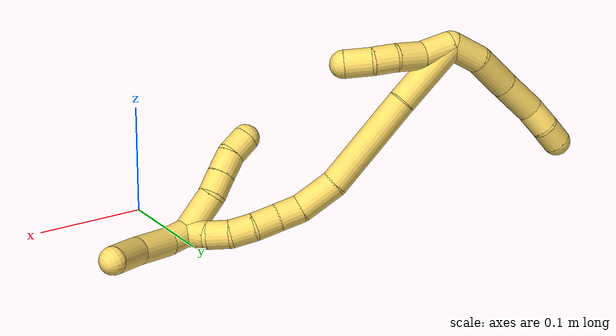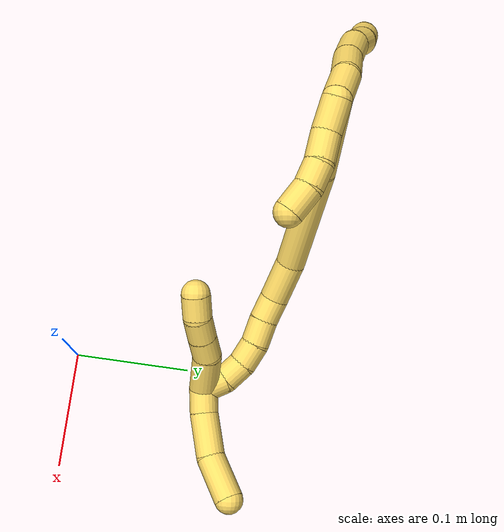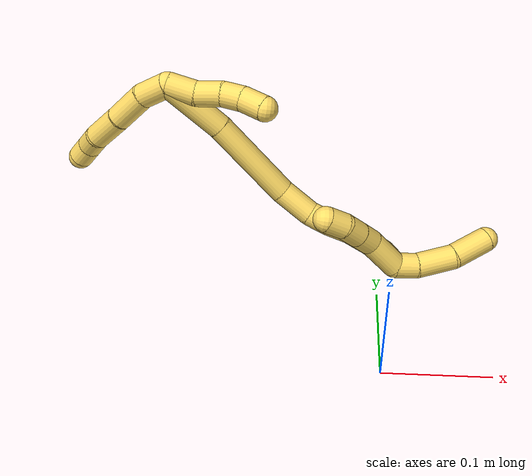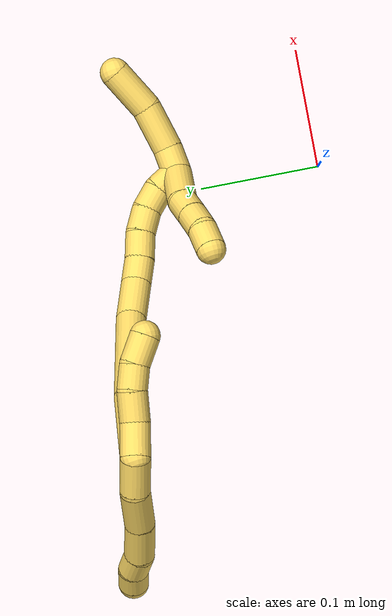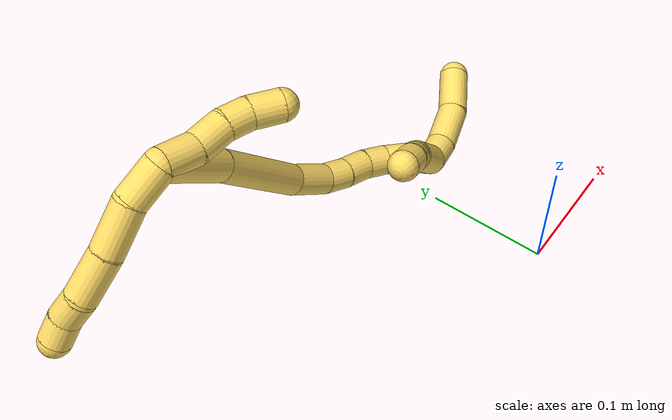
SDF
<sdf version="1.7">
 <world name="default">
  <model name="5">
   <static>0</static>
   <link name="5">
    <collision name="collision-cylinder-e_1_2_8">
     <pose>-0.008739 -0.007303 0.011016 0.585426 -0.584239 -0.180764</pose>
     <geometry><cylinder><radius>0.0125</radius><length>0.031689</length></cylinder></geometry>
     <surface>
      <friction><ode><mu>1.16</mu><mu2>1.16</mu2><slip1>0</slip1><slip2>0</slip2></ode></friction>
      <contact><ode><kp>1e+06</kp><kd>1</kd><max_vel>0</max_vel><min_depth>0.001</min_depth></ode></contact>
     </surface>
    </collision>
    <visual name="visual-cylinder-e_1_2_8">
     <pose>-0.008739 -0.007303 0.011016 0.585426 -0.584239 -0.180764</pose>
     <geometry><cylinder><radius>0.0125</radius><length>0.031689</length></cylinder></geometry>
     <material><ambient>1 0.858824 0.4 1</ambient></material>
    </visual>
    <collision name="collision-cylinder-e_2_8_9">
     <pose>-0.027166 -0.027746 0.032653 0.891015 -0.520579 -0.253002</pose>
     <geometry><cylinder><radius>0.0125</radius><length>0.038952</length></cylinder></geometry>
     <surface>
      <friction><ode><mu>1.16</mu><mu2>1.16</mu2><slip1>0</slip1><slip2>0</slip2></ode></friction>
      <contact><ode><kp>1e+06</kp><kd>1</kd><max_vel>0</max_vel><min_depth>0.001</min_depth></ode></contact>
     </surface>
    </collision>
    <visual name="visual-cylinder-e_2_8_9">
     <pose>-0.027166 -0.027746 0.032653 0.891015 -0.520579 -0.253002</pose>
     <geometry><cylinder><radius>0.0125</radius><length>0.038952</length></cylinder></geometry>
     <material><ambient>1 0.858824 0.4 1</ambient></material>
    </visual>
    <collision name="collision-cylinder-e_3_9_10">
     <pose>-0.047743 -0.052468 0.053124 0.865997 -0.62156 -0.294788</pose>
     <geometry><cylinder><radius>0.0125</radius><length>0.037403</length></cylinder></geometry>
     <surface>
      <friction><ode><mu>1.16</mu><mu2>1.16</mu2><slip1>0</slip1><slip2>0</slip2></ode></friction>
      <contact><ode><kp>1e+06</kp><kd>1</kd><max_vel>0</max_vel><min_depth>0.001</min_depth></ode></contact>
     </surface>
    </collision>
    <visual name="visual-cylinder-e_3_9_10">
     <pose>-0.047743 -0.052468 0.053124 0.865997 -0.62156 -0.294788</pose>
     <geometry><cylinder><radius>0.0125</radius><length>0.037403</length></cylinder></geometry>
     <material><ambient>1 0.858824 0.4 1</ambient></material>
    </visual>
    <collision name="collision-cylinder-e_4_10_11">
     <pose>-0.066926 -0.070152 0.066737 1.01833 -0.857974 -0.500011</pose>
     <geometry><cylinder><radius>0.0125</radius><length>0.021926</length></cylinder></geometry>
     <surface>
      <friction><ode><mu>1.16</mu><mu2>1.16</mu2><slip1>0</slip1><slip2>0</slip2></ode></friction>
      <contact><ode><kp>1e+06</kp><kd>1</kd><max_vel>0</max_vel><min_depth>0.001</min_depth></ode></contact>
     </surface>
    </collision>
    <visual name="visual-cylinder-e_4_10_11">
     <pose>-0.066926 -0.070152 0.066737 1.01833 -0.857974 -0.500011</pose>
     <geometry><cylinder><radius>0.0125</radius><length>0.021926</length></cylinder></geometry>
     <material><ambient>1 0.858824 0.4 1</ambient></material>
    </visual>
    <collision name="collision-cylinder-e_5_11_6">
     <pose>-0.080986 -0.083196 0.074843 1.01167 -0.613496 -0.347357</pose>
     <geometry><cylinder><radius>0.0125</radius><length>0.02003</length></cylinder></geometry>
     <surface>
      <friction><ode><mu>1.16</mu><mu2>1.16</mu2><slip1>0</slip1><slip2>0</slip2></ode></friction>
      <contact><ode><kp>1e+06</kp><kd>1</kd><max_vel>0</max_vel><min_depth>0.001</min_depth></ode></contact>
     </surface>
    </collision>
    <visual name="visual-cylinder-e_5_11_6">
     <pose>-0.080986 -0.083196 0.074843 1.01167 -0.613496 -0.347357</pose>
     <geometry><cylinder><radius>0.0125</radius><length>0.02003</length></cylinder></geometry>
     <material><ambient>1 0.858824 0.4 1</ambient></material>
    </visual>
    <collision name="collision-cylinder-e_1_2_12">
     <pose>0.003278 -0.002376 -0.013681 2.96964 0.231807 1.8671</pose>
     <geometry><cylinder><radius>0.0125</radius><length>0.028536</length></cylinder></geometry>
     <surface>
      <friction><ode><mu>1.16</mu><mu2>1.16</mu2><slip1>0</slip1><slip2>0</slip2></ode></friction>
      <contact><ode><kp>1e+06</kp><kd>1</kd><max_vel>0</max_vel><min_depth>0.001</min_depth></ode></contact>
     </surface>
    </collision>
    <visual name="visual-cylinder-e_1_2_12">
     <pose>0.003278 -0.002376 -0.013681 2.96964 0.231807 1.8671</pose>
     <geometry><cylinder><radius>0.0125</radius><length>0.028536</length></cylinder></geometry>
     <material><ambient>1 0.858824 0.4 1</ambient></material>
    </visual>
    <collision name="collision-cylinder-e_2_12_13">
     <pose>0.010548 -0.003133 -0.039632 -3.01037 0.312059 -2.35026</pose>
     <geometry><cylinder><radius>0.0125</radius><length>0.026008</length></cylinder></geometry>
     <surface>
      <friction><ode><mu>1.16</mu><mu2>1.16</mu2><slip1>0</slip1><slip2>0</slip2></ode></friction>
      <contact><ode><kp>1e+06</kp><kd>1</kd><max_vel>0</max_vel><min_depth>0.001</min_depth></ode></contact>
     </surface>
    </collision>
    <visual name="visual-cylinder-e_2_12_13">
     <pose>0.010548 -0.003133 -0.039632 -3.01037 0.312059 -2.35026</pose>
     <geometry><cylinder><radius>0.0125</radius><length>0.026008</length></cylinder></geometry>
     <material><ambient>1 0.858824 0.4 1</ambient></material>
    </visual>
    <collision name="collision-cylinder-e_3_13_14">
     <pose>0.018617 -0.002416 -0.061402 3.04687 0.403681 2.68638</pose>
     <geometry><cylinder><radius>0.0125</radius><length>0.020753</length></cylinder></geometry>
     <surface>
      <friction><ode><mu>1.16</mu><mu2>1.16</mu2><slip1>0</slip1><slip2>0</slip2></ode></friction>
      <contact><ode><kp>1e+06</kp><kd>1</kd><max_vel>0</max_vel><min_depth>0.001</min_depth></ode></contact>
     </surface>
    </collision>
    <visual name="visual-cylinder-e_3_13_14">
     <pose>0.018617 -0.002416 -0.061402 3.04687 0.403681 2.68638</pose>
     <geometry><cylinder><radius>0.0125</radius><length>0.020753</length></cylinder></geometry>
     <material><ambient>1 0.858824 0.4 1</ambient></material>
    </visual>
    <collision name="collision-cylinder-e_4_14_5">
     <pose>0.0296 -0.006168 -0.080737 2.85957 0.593442 2.27226</pose>
     <geometry><cylinder><radius>0.0125</radius><length>0.024703</length></cylinder></geometry>
     <surface>
      <friction><ode><mu>1.16</mu><mu2>1.16</mu2><slip1>0</slip1><slip2>0</slip2></ode></friction>
      <contact><ode><kp>1e+06</kp><kd>1</kd><max_vel>0</max_vel><min_depth>0.001</min_depth></ode></contact>
     </surface>
    </collision>
    <visual name="visual-cylinder-e_4_14_5">
     <pose>0.0296 -0.006168 -0.080737 2.85957 0.593442 2.27226</pose>
     <geometry><cylinder><radius>0.0125</radius><length>0.024703</length></cylinder></geometry>
     <material><ambient>1 0.858824 0.4 1</ambient></material>
    </visual>
    <collision name="collision-cylinder-e_1_2_15">
     <pose>-0.003996 -0.017389 -0.027433 2.57663 -0.122412 -0.416176</pose>
     <geometry><cylinder><radius>0.0125</radius><length>0.065451</length></cylinder></geometry>
     <surface>
      <friction><ode><mu>1.16</mu><mu2>1.16</mu2><slip1>0</slip1><slip2>0</slip2></ode></friction>
      <contact><ode><kp>1e+06</kp><kd>1</kd><max_vel>0</max_vel><min_depth>0.001</min_depth></ode></contact>
     </surface>
    </collision>
    <visual name="visual-cylinder-e_1_2_15">
     <pose>-0.003996 -0.017389 -0.027433 2.57663 -0.122412 -0.416176</pose>
     <geometry><cylinder><radius>0.0125</radius><length>0.065451</length></cylinder></geometry>
     <material><ambient>1 0.858824 0.4 1</ambient></material>
    </visual>
    <collision name="collision-cylinder-e_2_15_16">
     <pose>-0.012446 -0.06367 -0.090446 2.45957 -0.096869 -0.2715</pose>
     <geometry><cylinder><radius>0.0125</radius><length>0.092096</length></cylinder></geometry>
     <surface>
      <friction><ode><mu>1.16</mu><mu2>1.16</mu2><slip1>0</slip1><slip2>0</slip2></ode></friction>
      <contact><ode><kp>1e+06</kp><kd>1</kd><max_vel>0</max_vel><min_depth>0.001</min_depth></ode></contact>
     </surface>
    </collision>
    <visual name="visual-cylinder-e_2_15_16">
     <pose>-0.012446 -0.06367 -0.090446 2.45957 -0.096869 -0.2715</pose>
     <geometry><cylinder><radius>0.0125</radius><length>0.092096</length></cylinder></geometry>
     <material><ambient>1 0.858824 0.4 1</ambient></material>
    </visual>
    <collision name="collision-cylinder-e_3_16_17">
     <pose>-0.014782 -0.102187 -0.14144 2.58337 0.115964 0.399677</pose>
     <geometry><cylinder><radius>0.0125</radius><length>0.036591</length></cylinder></geometry>
     <surface>
      <friction><ode><mu>1.16</mu><mu2>1.16</mu2><slip1>0</slip1><slip2>0</slip2></ode></friction>
      <contact><ode><kp>1e+06</kp><kd>1</kd><max_vel>0</max_vel><min_depth>0.001</min_depth></ode></contact>
     </surface>
    </collision>
    <visual name="visual-cylinder-e_3_16_17">
     <pose>-0.014782 -0.102187 -0.14144 2.58337 0.115964 0.399677</pose>
     <geometry><cylinder><radius>0.0125</radius><length>0.036591</length></cylinder></geometry>
     <material><ambient>1 0.858824 0.4 1</ambient></material>
    </visual>
    <collision name="collision-cylinder-e_4_17_18">
     <pose>-0.009522 -0.115211 -0.166499 2.80282 0.298248 1.44159</pose>
     <geometry><cylinder><radius>0.0125</radius><length>0.021397</length></cylinder></geometry>
     <surface>
      <friction><ode><mu>1.16</mu><mu2>1.16</mu2><slip1>0</slip1><slip2>0</slip2></ode></friction>
      <contact><ode><kp>1e+06</kp><kd>1</kd><max_vel>0</max_vel><min_depth>0.001</min_depth></ode></contact>
     </surface>
    </collision>
    <visual name="visual-cylinder-e_4_17_18">
     <pose>-0.009522 -0.115211 -0.166499 2.80282 0.298248 1.44159</pose>
     <geometry><cylinder><radius>0.0125</radius><length>0.021397</length></cylinder></geometry>
     <material><ambient>1 0.858824 0.4 1</ambient></material>
    </visual>
    <collision name="collision-cylinder-e_5_18_19">
     <pose>-0.003676 -0.12111 -0.186794 2.91098 0.242143 1.62004</pose>
     <geometry><cylinder><radius>0.0125</radius><length>0.022537</length></cylinder></geometry>
     <surface>
      <friction><ode><mu>1.16</mu><mu2>1.16</mu2><slip1>0</slip1><slip2>0</slip2></ode></friction>
      <contact><ode><kp>1e+06</kp><kd>1</kd><max_vel>0</max_vel><min_depth>0.001</min_depth></ode></contact>
     </surface>
    </collision>
    <visual name="visual-cylinder-e_5_18_19">
     <pose>-0.003676 -0.12111 -0.186794 2.91098 0.242143 1.62004</pose>
     <geometry><cylinder><radius>0.0125</radius><length>0.022537</length></cylinder></geometry>
     <material><ambient>1 0.858824 0.4 1</ambient></material>
    </visual>
    <collision name="collision-cylinder-e_6_19_20">
     <pose>0.003294 -0.1271 -0.206464 2.77249 0.415601 1.69224</pose>
     <geometry><cylinder><radius>0.0125</radius><length>0.021143</length></cylinder></geometry>
     <surface>
      <friction><ode><mu>1.16</mu><mu2>1.16</mu2><slip1>0</slip1><slip2>0</slip2></ode></friction>
      <contact><ode><kp>1e+06</kp><kd>1</kd><max_vel>0</max_vel><min_depth>0.001</min_depth></ode></contact>
     </surface>
    </collision>
    <visual name="visual-cylinder-e_6_19_20">
     <pose>0.003294 -0.1271 -0.206464 2.77249 0.415601 1.69224</pose>
     <geometry><cylinder><radius>0.0125</radius><length>0.021143</length></cylinder></geometry>
     <material><ambient>1 0.858824 0.4 1</ambient></material>
    </visual>
    <collision name="collision-cylinder-e_7_20_21">
     <pose>0.014085 -0.133855 -0.222397 2.70018 0.706338 2.04809</pose>
     <geometry><cylinder><radius>0.0125</radius><length>0.020101</length></cylinder></geometry>
     <surface>
      <friction><ode><mu>1.16</mu><mu2>1.16</mu2><slip1>0</slip1><slip2>0</slip2></ode></friction>
      <contact><ode><kp>1e+06</kp><kd>1</kd><max_vel>0</max_vel><min_depth>0.001</min_depth></ode></contact>
     </surface>
    </collision>
    <visual name="visual-cylinder-e_7_20_21">
     <pose>0.014085 -0.133855 -0.222397 2.70018 0.706338 2.04809</pose>
     <geometry><cylinder><radius>0.0125</radius><length>0.020101</length></cylinder></geometry>
     <material><ambient>1 0.858824 0.4 1</ambient></material>
    </visual>
    <collision name="collision-cylinder-e_8_21_1">
     <pose>0.029123 -0.141145 -0.233585 2.38646 0.967201 1.84803</pose>
     <geometry><cylinder><radius>0.0125</radius><length>0.020684</length></cylinder></geometry>
     <surface>
      <friction><ode><mu>1.16</mu><mu2>1.16</mu2><slip1>0</slip1><slip2>0</slip2></ode></friction>
      <contact><ode><kp>1e+06</kp><kd>1</kd><max_vel>0</max_vel><min_depth>0.001</min_depth></ode></contact>
     </surface>
    </collision>
    <visual name="visual-cylinder-e_8_21_1">
     <pose>0.029123 -0.141145 -0.233585 2.38646 0.967201 1.84803</pose>
     <geometry><cylinder><radius>0.0125</radius><length>0.020684</length></cylinder></geometry>
     <material><ambient>1 0.858824 0.4 1</ambient></material>
    </visual>
    <collision name="collision-cylinder-e_1_1_22">
     <pose>0.041827 -0.134069 -0.222881 -0.637713 0.221019 -0.073229</pose>
     <geometry><cylinder><radius>0.0125</radius><length>0.038215</length></cylinder></geometry>
     <surface>
      <friction><ode><mu>1.16</mu><mu2>1.16</mu2><slip1>0</slip1><slip2>0</slip2></ode></friction>
      <contact><ode><kp>1e+06</kp><kd>1</kd><max_vel>0</max_vel><min_depth>0.001</min_depth></ode></contact>
     </surface>
    </collision>
    <visual name="visual-cylinder-e_1_1_22">
     <pose>0.041827 -0.134069 -0.222881 -0.637713 0.221019 -0.073229</pose>
     <geometry><cylinder><radius>0.0125</radius><length>0.038215</length></cylinder></geometry>
     <material><ambient>1 0.858824 0.4 1</ambient></material>
    </visual>
    <collision name="collision-cylinder-e_2_22_23">
     <pose>0.050667 -0.118864 -0.199869 -0.472569 0.476054 -0.116708</pose>
     <geometry><cylinder><radius>0.0125</radius><length>0.020302</length></cylinder></geometry>
     <surface>
      <friction><ode><mu>1.16</mu><mu2>1.16</mu2><slip1>0</slip1><slip2>0</slip2></ode></friction>
      <contact><ode><kp>1e+06</kp><kd>1</kd><max_vel>0</max_vel><min_depth>0.001</min_depth></ode></contact>
     </surface>
    </collision>
    <visual name="visual-cylinder-e_2_22_23">
     <pose>0.050667 -0.118864 -0.199869 -0.472569 0.476054 -0.116708</pose>
     <geometry><cylinder><radius>0.0125</radius><length>0.020302</length></cylinder></geometry>
     <material><ambient>1 0.858824 0.4 1</ambient></material>
    </visual>
    <collision name="collision-cylinder-e_3_23_24">
     <pose>0.059868 -0.11057 -0.183455 -0.46331 0.452011 -0.108372</pose>
     <geometry><cylinder><radius>0.0125</radius><length>0.020827</length></cylinder></geometry>
     <surface>
      <friction><ode><mu>1.16</mu><mu2>1.16</mu2><slip1>0</slip1><slip2>0</slip2></ode></friction>
      <contact><ode><kp>1e+06</kp><kd>1</kd><max_vel>0</max_vel><min_depth>0.001</min_depth></ode></contact>
     </surface>
    </collision>
    <visual name="visual-cylinder-e_3_23_24">
     <pose>0.059868 -0.11057 -0.183455 -0.46331 0.452011 -0.108372</pose>
     <geometry><cylinder><radius>0.0125</radius><length>0.020827</length></cylinder></geometry>
     <material><ambient>1 0.858824 0.4 1</ambient></material>
    </visual>
    <collision name="collision-cylinder-e_4_24_4">
     <pose>0.066821 -0.103674 -0.165404 -0.27322 0.235005 -0.032452</pose>
     <geometry><cylinder><radius>0.0125</radius><length>0.020656</length></cylinder></geometry>
     <surface>
      <friction><ode><mu>1.16</mu><mu2>1.16</mu2><slip1>0</slip1><slip2>0</slip2></ode></friction>
      <contact><ode><kp>1e+06</kp><kd>1</kd><max_vel>0</max_vel><min_depth>0.001</min_depth></ode></contact>
     </surface>
    </collision>
    <visual name="visual-cylinder-e_4_24_4">
     <pose>0.066821 -0.103674 -0.165404 -0.27322 0.235005 -0.032452</pose>
     <geometry><cylinder><radius>0.0125</radius><length>0.020656</length></cylinder></geometry>
     <material><ambient>1 0.858824 0.4 1</ambient></material>
    </visual>
    <collision name="collision-cylinder-e_1_1_25">
     <pose>0.037376 -0.144422 -0.248854 -3.07378 -0.023771 0.674151</pose>
     <geometry><cylinder><radius>0.0125</radius><length>0.022046</length></cylinder></geometry>
     <surface>
      <friction><ode><mu>1.16</mu><mu2>1.16</mu2><slip1>0</slip1><slip2>0</slip2></ode></friction>
      <contact><ode><kp>1e+06</kp><kd>1</kd><max_vel>0</max_vel><min_depth>0.001</min_depth></ode></contact>
     </surface>
    </collision>
    <visual name="visual-cylinder-e_1_1_25">
     <pose>0.037376 -0.144422 -0.248854 -3.07378 -0.023771 0.674151</pose>
     <geometry><cylinder><radius>0.0125</radius><length>0.022046</length></cylinder></geometry>
     <material><ambient>1 0.858824 0.4 1</ambient></material>
    </visual>
    <collision name="collision-cylinder-e_2_25_26">
     <pose>0.036547 -0.137462 -0.278028 -2.81229 -0.029487 0.177011</pose>
     <geometry><cylinder><radius>0.0125</radius><length>0.038439</length></cylinder></geometry>
     <surface>
      <friction><ode><mu>1.16</mu><mu2>1.16</mu2><slip1>0</slip1><slip2>0</slip2></ode></friction>
      <contact><ode><kp>1e+06</kp><kd>1</kd><max_vel>0</max_vel><min_depth>0.001</min_depth></ode></contact>
     </surface>
    </collision>
    <visual name="visual-cylinder-e_2_25_26">
     <pose>0.036547 -0.137462 -0.278028 -2.81229 -0.029487 0.177011</pose>
     <geometry><cylinder><radius>0.0125</radius><length>0.038439</length></cylinder></geometry>
     <material><ambient>1 0.858824 0.4 1</ambient></material>
    </visual>
    <collision name="collision-cylinder-e_3_26_3">
     <pose>0.031824 -0.121665 -0.312976 -2.62235 -0.211964 0.761879</pose>
     <geometry><cylinder><radius>0.0125</radius><length>0.039514</length></cylinder></geometry>
     <surface>
      <friction><ode><mu>1.16</mu><mu2>1.16</mu2><slip1>0</slip1><slip2>0</slip2></ode></friction>
      <contact><ode><kp>1e+06</kp><kd>1</kd><max_vel>0</max_vel><min_depth>0.001</min_depth></ode></contact>
     </surface>
    </collision>
    <visual name="visual-cylinder-e_3_26_3">
     <pose>0.031824 -0.121665 -0.312976 -2.62235 -0.211964 0.761879</pose>
     <geometry><cylinder><radius>0.0125</radius><length>0.039514</length></cylinder></geometry>
     <material><ambient>1 0.858824 0.4 1</ambient></material>
    </visual>
    <collision name="collision-sphere-3">
     <pose>0.027668 -0.112081 -0.329745 0 -0 0</pose>
     <geometry><sphere><radius>0.0125</radius></sphere></geometry>
     <surface>
      <friction><ode><mu>1.16</mu><mu2>1.16</mu2><slip1>0</slip1><slip2>0</slip2></ode></friction>
      <contact><ode><kp>1e+06</kp><kd>1</kd><max_vel>0</max_vel><min_depth>0.001</min_depth></ode></contact>
     </surface>
    </collision>
    <visual name="visual-sphere-3">
     <pose>0.027668 -0.112081 -0.329745 0 -0 0</pose>
     <geometry><sphere><radius>0.0125</radius></sphere></geometry>
     <material><ambient>1 0.858824 0.4 1</ambient></material>
    </visual>
    <collision name="collision-sphere-26">
     <pose>0.035981 -0.13125 -0.296207 0 -0 0</pose>
     <geometry><sphere><radius>0.0125</radius></sphere></geometry>
     <surface>
      <friction><ode><mu>1.16</mu><mu2>1.16</mu2><slip1>0</slip1><slip2>0</slip2></ode></friction>
      <contact><ode><kp>1e+06</kp><kd>1</kd><max_vel>0</max_vel><min_depth>0.001</min_depth></ode></contact>
     </surface>
    </collision>
    <visual name="visual-sphere-26">
     <pose>0.035981 -0.13125 -0.296207 0 -0 0</pose>
     <geometry><sphere><radius>0.0125</radius></sphere></geometry>
     <material><ambient>1 0.858824 0.4 1</ambient></material>
    </visual>
    <collision name="collision-sphere-25">
     <pose>0.037114 -0.143675 -0.259849 0 -0 0</pose>
     <geometry><sphere><radius>0.0125</radius></sphere></geometry>
     <surface>
      <friction><ode><mu>1.16</mu><mu2>1.16</mu2><slip1>0</slip1><slip2>0</slip2></ode></friction>
      <contact><ode><kp>1e+06</kp><kd>1</kd><max_vel>0</max_vel><min_depth>0.001</min_depth></ode></contact>
     </surface>
    </collision>
    <visual name="visual-sphere-25">
     <pose>0.037114 -0.143675 -0.259849 0 -0 0</pose>
     <geometry><sphere><radius>0.0125</radius></sphere></geometry>
     <material><ambient>1 0.858824 0.4 1</ambient></material>
    </visual>
    <collision name="collision-sphere-4">
     <pose>0.069226 -0.100963 -0.155732 0 -0 0</pose>
     <geometry><sphere><radius>0.0125</radius></sphere></geometry>
     <surface>
      <friction><ode><mu>1.16</mu><mu2>1.16</mu2><slip1>0</slip1><slip2>0</slip2></ode></friction>
      <contact><ode><kp>1e+06</kp><kd>1</kd><max_vel>0</max_vel><min_depth>0.001</min_depth></ode></contact>
     </surface>
    </collision>
    <visual name="visual-sphere-4">
     <pose>0.069226 -0.100963 -0.155732 0 -0 0</pose>
     <geometry><sphere><radius>0.0125</radius></sphere></geometry>
     <material><ambient>1 0.858824 0.4 1</ambient></material>
    </visual>
    <collision name="collision-sphere-24">
     <pose>0.064416 -0.106384 -0.175075 0 -0 0</pose>
     <geometry><sphere><radius>0.0125</radius></sphere></geometry>
     <surface>
      <friction><ode><mu>1.16</mu><mu2>1.16</mu2><slip1>0</slip1><slip2>0</slip2></ode></friction>
      <contact><ode><kp>1e+06</kp><kd>1</kd><max_vel>0</max_vel><min_depth>0.001</min_depth></ode></contact>
     </surface>
    </collision>
    <visual name="visual-sphere-24">
     <pose>0.064416 -0.106384 -0.175075 0 -0 0</pose>
     <geometry><sphere><radius>0.0125</radius></sphere></geometry>
     <material><ambient>1 0.858824 0.4 1</ambient></material>
    </visual>
    <collision name="collision-sphere-23">
     <pose>0.055319 -0.114757 -0.191836 0 -0 0</pose>
     <geometry><sphere><radius>0.0125</radius></sphere></geometry>
     <surface>
      <friction><ode><mu>1.16</mu><mu2>1.16</mu2><slip1>0</slip1><slip2>0</slip2></ode></friction>
      <contact><ode><kp>1e+06</kp><kd>1</kd><max_vel>0</max_vel><min_depth>0.001</min_depth></ode></contact>
     </surface>
    </collision>
    <visual name="visual-sphere-23">
     <pose>0.055319 -0.114757 -0.191836 0 -0 0</pose>
     <geometry><sphere><radius>0.0125</radius></sphere></geometry>
     <material><ambient>1 0.858824 0.4 1</ambient></material>
    </visual>
    <collision name="collision-sphere-22">
     <pose>0.046015 -0.12297 -0.207902 0 -0 0</pose>
     <geometry><sphere><radius>0.0125</radius></sphere></geometry>
     <surface>
      <friction><ode><mu>1.16</mu><mu2>1.16</mu2><slip1>0</slip1><slip2>0</slip2></ode></friction>
      <contact><ode><kp>1e+06</kp><kd>1</kd><max_vel>0</max_vel><min_depth>0.001</min_depth></ode></contact>
     </surface>
    </collision>
    <visual name="visual-sphere-22">
     <pose>0.046015 -0.12297 -0.207902 0 -0 0</pose>
     <geometry><sphere><radius>0.0125</radius></sphere></geometry>
     <material><ambient>1 0.858824 0.4 1</ambient></material>
    </visual>
    <collision name="collision-sphere-1">
     <pose>0.037638 -0.145168 -0.237859 0 -0 0</pose>
     <geometry><sphere><radius>0.0125</radius></sphere></geometry>
     <surface>
      <friction><ode><mu>1.16</mu><mu2>1.16</mu2><slip1>0</slip1><slip2>0</slip2></ode></friction>
      <contact><ode><kp>1e+06</kp><kd>1</kd><max_vel>0</max_vel><min_depth>0.001</min_depth></ode></contact>
     </surface>
    </collision>
    <visual name="visual-sphere-1">
     <pose>0.037638 -0.145168 -0.237859 0 -0 0</pose>
     <geometry><sphere><radius>0.0125</radius></sphere></geometry>
     <material><ambient>1 0.858824 0.4 1</ambient></material>
    </visual>
    <collision name="collision-sphere-21">
     <pose>0.020609 -0.137122 -0.22931 0 -0 0</pose>
     <geometry><sphere><radius>0.0125</radius></sphere></geometry>
     <surface>
      <friction><ode><mu>1.16</mu><mu2>1.16</mu2><slip1>0</slip1><slip2>0</slip2></ode></friction>
      <contact><ode><kp>1e+06</kp><kd>1</kd><max_vel>0</max_vel><min_depth>0.001</min_depth></ode></contact>
     </surface>
    </collision>
    <visual name="visual-sphere-21">
     <pose>0.020609 -0.137122 -0.22931 0 -0 0</pose>
     <geometry><sphere><radius>0.0125</radius></sphere></geometry>
     <material><ambient>1 0.858824 0.4 1</ambient></material>
    </visual>
    <collision name="collision-sphere-6">
     <pose>-0.086752 -0.090138 0.079186 0 -0 0</pose>
     <geometry><sphere><radius>0.0125</radius></sphere></geometry>
     <surface>
      <friction><ode><mu>1.16</mu><mu2>1.16</mu2><slip1>0</slip1><slip2>0</slip2></ode></friction>
      <contact><ode><kp>1e+06</kp><kd>1</kd><max_vel>0</max_vel><min_depth>0.001</min_depth></ode></contact>
     </surface>
    </collision>
    <visual name="visual-sphere-6">
     <pose>-0.086752 -0.090138 0.079186 0 -0 0</pose>
     <geometry><sphere><radius>0.0125</radius></sphere></geometry>
     <material><ambient>1 0.858824 0.4 1</ambient></material>
    </visual>
    <collision name="collision-sphere-11">
     <pose>-0.07522 -0.076255 0.070499 0 -0 0</pose>
     <geometry><sphere><radius>0.0125</radius></sphere></geometry>
     <surface>
      <friction><ode><mu>1.16</mu><mu2>1.16</mu2><slip1>0</slip1><slip2>0</slip2></ode></friction>
      <contact><ode><kp>1e+06</kp><kd>1</kd><max_vel>0</max_vel><min_depth>0.001</min_depth></ode></contact>
     </surface>
    </collision>
    <visual name="visual-sphere-11">
     <pose>-0.07522 -0.076255 0.070499 0 -0 0</pose>
     <geometry><sphere><radius>0.0125</radius></sphere></geometry>
     <material><ambient>1 0.858824 0.4 1</ambient></material>
    </visual>
    <collision name="collision-sphere-10">
     <pose>-0.058633 -0.064049 0.062974 0 -0 0</pose>
     <geometry><sphere><radius>0.0125</radius></sphere></geometry>
     <surface>
      <friction><ode><mu>1.16</mu><mu2>1.16</mu2><slip1>0</slip1><slip2>0</slip2></ode></friction>
      <contact><ode><kp>1e+06</kp><kd>1</kd><max_vel>0</max_vel><min_depth>0.001</min_depth></ode></contact>
     </surface>
    </collision>
    <visual name="visual-sphere-10">
     <pose>-0.058633 -0.064049 0.062974 0 -0 0</pose>
     <geometry><sphere><radius>0.0125</radius></sphere></geometry>
     <material><ambient>1 0.858824 0.4 1</ambient></material>
    </visual>
    <collision name="collision-sphere-9">
     <pose>-0.036853 -0.040886 0.043274 0 -0 0</pose>
     <geometry><sphere><radius>0.0125</radius></sphere></geometry>
     <surface>
      <friction><ode><mu>1.16</mu><mu2>1.16</mu2><slip1>0</slip1><slip2>0</slip2></ode></friction>
      <contact><ode><kp>1e+06</kp><kd>1</kd><max_vel>0</max_vel><min_depth>0.001</min_depth></ode></contact>
     </surface>
    </collision>
    <visual name="visual-sphere-9">
     <pose>-0.036853 -0.040886 0.043274 0 -0 0</pose>
     <geometry><sphere><radius>0.0125</radius></sphere></geometry>
     <material><ambient>1 0.858824 0.4 1</ambient></material>
    </visual>
    <collision name="collision-sphere-2">
     <geometry><sphere><radius>0.0125</radius></sphere></geometry>
     <surface>
      <friction><ode><mu>1.16</mu><mu2>1.16</mu2><slip1>0</slip1><slip2>0</slip2></ode></friction>
      <contact><ode><kp>1e+06</kp><kd>1</kd><max_vel>0</max_vel><min_depth>0.001</min_depth></ode></contact>
     </surface>
    </collision>
    <visual name="visual-sphere-2">
     <geometry><sphere><radius>0.0125</radius></sphere></geometry>
     <material><ambient>1 0.858824 0.4 1</ambient></material>
    </visual>
    <collision name="collision-sphere-19">
     <pose>-0.000974 -0.12361 -0.197444 0 -0 0</pose>
     <geometry><sphere><radius>0.0125</radius></sphere></geometry>
     <surface>
      <friction><ode><mu>1.16</mu><mu2>1.16</mu2><slip1>0</slip1><slip2>0</slip2></ode></friction>
      <contact><ode><kp>1e+06</kp><kd>1</kd><max_vel>0</max_vel><min_depth>0.001</min_depth></ode></contact>
     </surface>
    </collision>
    <visual name="visual-sphere-19">
     <pose>-0.000974 -0.12361 -0.197444 0 -0 0</pose>
     <geometry><sphere><radius>0.0125</radius></sphere></geometry>
     <material><ambient>1 0.858824 0.4 1</ambient></material>
    </visual>
    <collision name="collision-sphere-8">
     <pose>-0.017479 -0.014606 0.022031 0 -0 0</pose>
     <geometry><sphere><radius>0.0125</radius></sphere></geometry>
     <surface>
      <friction><ode><mu>1.16</mu><mu2>1.16</mu2><slip1>0</slip1><slip2>0</slip2></ode></friction>
      <contact><ode><kp>1e+06</kp><kd>1</kd><max_vel>0</max_vel><min_depth>0.001</min_depth></ode></contact>
     </surface>
    </collision>
    <visual name="visual-sphere-8">
     <pose>-0.017479 -0.014606 0.022031 0 -0 0</pose>
     <geometry><sphere><radius>0.0125</radius></sphere></geometry>
     <material><ambient>1 0.858824 0.4 1</ambient></material>
    </visual>
    <collision name="collision-sphere-12">
     <pose>0.006556 -0.004752 -0.027363 0 -0 0</pose>
     <geometry><sphere><radius>0.0125</radius></sphere></geometry>
     <surface>
      <friction><ode><mu>1.16</mu><mu2>1.16</mu2><slip1>0</slip1><slip2>0</slip2></ode></friction>
      <contact><ode><kp>1e+06</kp><kd>1</kd><max_vel>0</max_vel><min_depth>0.001</min_depth></ode></contact>
     </surface>
    </collision>
    <visual name="visual-sphere-12">
     <pose>0.006556 -0.004752 -0.027363 0 -0 0</pose>
     <geometry><sphere><radius>0.0125</radius></sphere></geometry>
     <material><ambient>1 0.858824 0.4 1</ambient></material>
    </visual>
    <collision name="collision-sphere-13">
     <pose>0.014541 -0.001513 -0.051902 0 -0 0</pose>
     <geometry><sphere><radius>0.0125</radius></sphere></geometry>
     <surface>
      <friction><ode><mu>1.16</mu><mu2>1.16</mu2><slip1>0</slip1><slip2>0</slip2></ode></friction>
      <contact><ode><kp>1e+06</kp><kd>1</kd><max_vel>0</max_vel><min_depth>0.001</min_depth></ode></contact>
     </surface>
    </collision>
    <visual name="visual-sphere-13">
     <pose>0.014541 -0.001513 -0.051902 0 -0 0</pose>
     <geometry><sphere><radius>0.0125</radius></sphere></geometry>
     <material><ambient>1 0.858824 0.4 1</ambient></material>
    </visual>
    <collision name="collision-sphere-14">
     <pose>0.022693 -0.003318 -0.070901 0 -0 0</pose>
     <geometry><sphere><radius>0.0125</radius></sphere></geometry>
     <surface>
      <friction><ode><mu>1.16</mu><mu2>1.16</mu2><slip1>0</slip1><slip2>0</slip2></ode></friction>
      <contact><ode><kp>1e+06</kp><kd>1</kd><max_vel>0</max_vel><min_depth>0.001</min_depth></ode></contact>
     </surface>
    </collision>
    <visual name="visual-sphere-14">
     <pose>0.022693 -0.003318 -0.070901 0 -0 0</pose>
     <geometry><sphere><radius>0.0125</radius></sphere></geometry>
     <material><ambient>1 0.858824 0.4 1</ambient></material>
    </visual>
    <collision name="collision-sphere-5">
     <pose>0.036507 -0.009018 -0.090572 0 -0 0</pose>
     <geometry><sphere><radius>0.0125</radius></sphere></geometry>
     <surface>
      <friction><ode><mu>1.16</mu><mu2>1.16</mu2><slip1>0</slip1><slip2>0</slip2></ode></friction>
      <contact><ode><kp>1e+06</kp><kd>1</kd><max_vel>0</max_vel><min_depth>0.001</min_depth></ode></contact>
     </surface>
    </collision>
    <visual name="visual-sphere-5">
     <pose>0.036507 -0.009018 -0.090572 0 -0 0</pose>
     <geometry><sphere><radius>0.0125</radius></sphere></geometry>
     <material><ambient>1 0.858824 0.4 1</ambient></material>
    </visual>
    <collision name="collision-sphere-15">
     <pose>-0.007992 -0.034779 -0.054867 0 -0 0</pose>
     <geometry><sphere><radius>0.0125</radius></sphere></geometry>
     <surface>
      <friction><ode><mu>1.16</mu><mu2>1.16</mu2><slip1>0</slip1><slip2>0</slip2></ode></friction>
      <contact><ode><kp>1e+06</kp><kd>1</kd><max_vel>0</max_vel><min_depth>0.001</min_depth></ode></contact>
     </surface>
    </collision>
    <visual name="visual-sphere-15">
     <pose>-0.007992 -0.034779 -0.054867 0 -0 0</pose>
     <geometry><sphere><radius>0.0125</radius></sphere></geometry>
     <material><ambient>1 0.858824 0.4 1</ambient></material>
    </visual>
    <collision name="collision-sphere-16">
     <pose>-0.016899 -0.092561 -0.126026 0 -0 0</pose>
     <geometry><sphere><radius>0.0125</radius></sphere></geometry>
     <surface>
      <friction><ode><mu>1.16</mu><mu2>1.16</mu2><slip1>0</slip1><slip2>0</slip2></ode></friction>
      <contact><ode><kp>1e+06</kp><kd>1</kd><max_vel>0</max_vel><min_depth>0.001</min_depth></ode></contact>
     </surface>
    </collision>
    <visual name="visual-sphere-16">
     <pose>-0.016899 -0.092561 -0.126026 0 -0 0</pose>
     <geometry><sphere><radius>0.0125</radius></sphere></geometry>
     <material><ambient>1 0.858824 0.4 1</ambient></material>
    </visual>
    <collision name="collision-sphere-17">
     <pose>-0.012666 -0.111813 -0.156854 0 -0 0</pose>
     <geometry><sphere><radius>0.0125</radius></sphere></geometry>
     <surface>
      <friction><ode><mu>1.16</mu><mu2>1.16</mu2><slip1>0</slip1><slip2>0</slip2></ode></friction>
      <contact><ode><kp>1e+06</kp><kd>1</kd><max_vel>0</max_vel><min_depth>0.001</min_depth></ode></contact>
     </surface>
    </collision>
    <visual name="visual-sphere-17">
     <pose>-0.012666 -0.111813 -0.156854 0 -0 0</pose>
     <geometry><sphere><radius>0.0125</radius></sphere></geometry>
     <material><ambient>1 0.858824 0.4 1</ambient></material>
    </visual>
    <collision name="collision-sphere-18">
     <pose>-0.006378 -0.118609 -0.176144 0 -0 0</pose>
     <geometry><sphere><radius>0.0125</radius></sphere></geometry>
     <surface>
      <friction><ode><mu>1.16</mu><mu2>1.16</mu2><slip1>0</slip1><slip2>0</slip2></ode></friction>
      <contact><ode><kp>1e+06</kp><kd>1</kd><max_vel>0</max_vel><min_depth>0.001</min_depth></ode></contact>
     </surface>
    </collision>
    <visual name="visual-sphere-18">
     <pose>-0.006378 -0.118609 -0.176144 0 -0 0</pose>
     <geometry><sphere><radius>0.0125</radius></sphere></geometry>
     <material><ambient>1 0.858824 0.4 1</ambient></material>
    </visual>
    <collision name="collision-sphere-20">
     <pose>0.007562 -0.130589 -0.215484 0 -0 0</pose>
     <geometry><sphere><radius>0.0125</radius></sphere></geometry>
     <surface>
      <friction><ode><mu>1.16</mu><mu2>1.16</mu2><slip1>0</slip1><slip2>0</slip2></ode></friction>
      <contact><ode><kp>1e+06</kp><kd>1</kd><max_vel>0</max_vel><min_depth>0.001</min_depth></ode></contact>
     </surface>
    </collision>
    <visual name="visual-sphere-20">
     <pose>0.007562 -0.130589 -0.215484 0 -0 0</pose>
     <geometry><sphere><radius>0.0125</radius></sphere></geometry>
     <material><ambient>1 0.858824 0.4 1</ambient></material>
    </visual>
    <inertial>
     <pose>0.003647 -0.075094 -0.110951 0 -0 0</pose>
     <mass>0.75</mass>
     <inertia><ixx>0.000112</ixx><ixy>0</ixy><ixz>0</ixz><iyy>-8e-05</iyy><iyz>0</iyz><izz>5.6e-05</izz></inertia>
    </inertial>
   </link>
   <pose>-0.207901 0.192479 0.17706 1.36427 -0.474954 -1.35693</pose>
  </model>
 </world>
</sdf>
